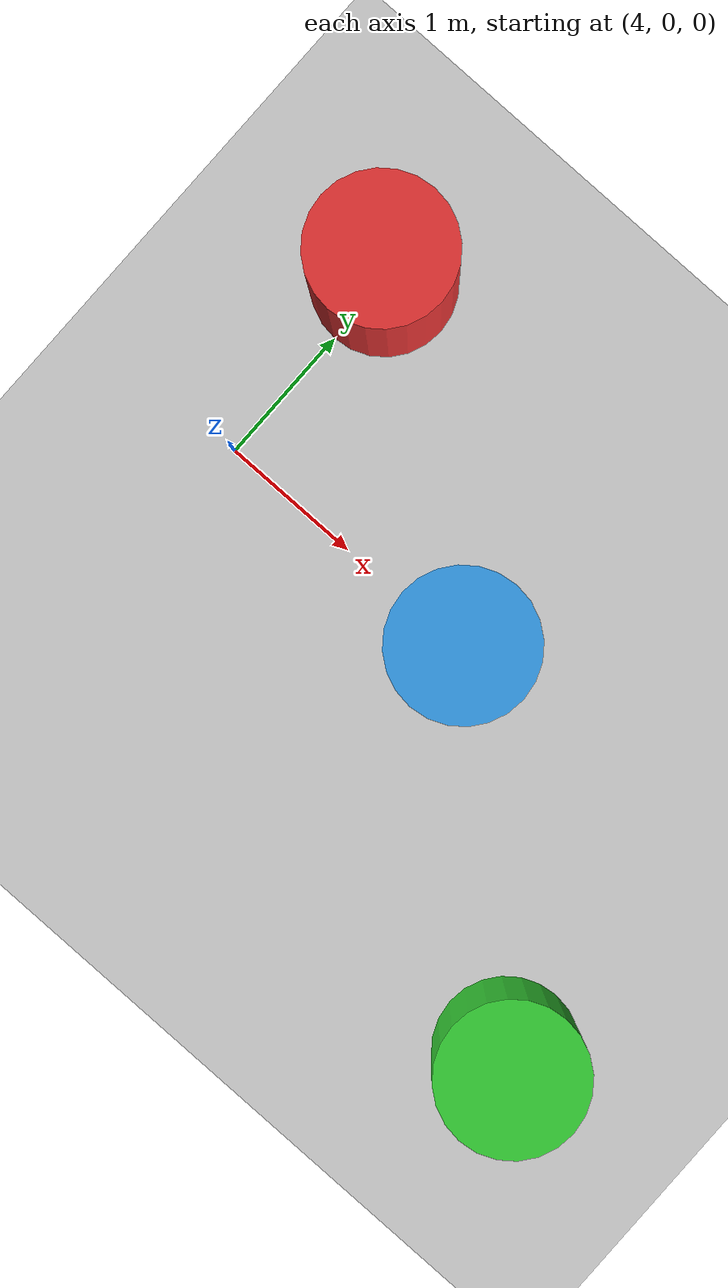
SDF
<?xml version="1.0" ?>
<sdf version="1.5">
    <world name="default">

        <physics type="ode">
            <max_step_size>0.0005</max_step_size>
            <real_time_factor>1</real_time_factor>
            <real_time_update_rate>2000</real_time_update_rate>
            <gravity>0 0 -9.81</gravity>
            <ode>
                <solver>
                    <type>quick</type>
                    <iters>50</iters>
                    <sor>1.3</sor>
                </solver>
                <constraints>
                    <cfm>0.0</cfm>
                    <erp>0.2</erp>
                    <contact_max_correcting_vel>10.0</contact_max_correcting_vel>
                    <contact_surface_layer>0.001</contact_surface_layer>
                </constraints>
            </ode>
        </physics>

        <scene>
            <sky>
                <clouds>
                    <speed>12</speed>
                </clouds>
            </sky>
        </scene>

        <include>
            <uri>model://sun</uri>
        </include>
        <include>
            <uri>model://ground_plane</uri>
        </include>

        <!-- 正前方偏右，大圆柱 -->
        <model name="obstacle_1">
            <static>true</static>
            <link name="link">
                <pose>4.0 1.5 1.0 0 0 0</pose>
                <collision name="collision">
                    <geometry>
                        <cylinder>
                            <radius>0.5</radius>
                            <length>2.0</length>
                        </cylinder>
                    </geometry>
                </collision>
                <visual name="visual">
                    <geometry>
                        <cylinder>
                            <radius>0.5</radius>
                            <length>2.0</length>
                        </cylinder>
                    </geometry>
                    <material>
                        <ambient>0.9 0.2 0.2 1.0</ambient>
                        <diffuse>0.9 0.2 0.2 1.0</diffuse>
                    </material>
                </visual>
            </link>
        </model>

        <!-- 正前方正中间，大圆柱 -->
        <model name="obstacle_2">
            <static>true</static>
            <link name="link">
                <pose>6.0 0.0 1.0 0 0 0</pose>
                <collision name="collision">
                    <geometry>
                        <cylinder>
                            <radius>0.5</radius>
                            <length>2.0</length>
                        </cylinder>
                    </geometry>
                </collision>
                <visual name="visual">
                    <geometry>
                        <cylinder>
                            <radius>0.5</radius>
                            <length>2.0</length>
                        </cylinder>
                    </geometry>
                    <material>
                        <ambient>0.2 0.6 0.9 1.0</ambient>
                        <diffuse>0.2 0.6 0.9 1.0</diffuse>
                    </material>
                </visual>
            </link>
        </model>

        <!-- 正前方偏左，大圆柱 -->
        <model name="obstacle_3">
            <static>true</static>
            <link name="link">
                <pose>8.0 -1.8 1.0 0 0 0</pose>
                <collision name="collision">
                    <geometry>
                        <cylinder>
                            <radius>0.5</radius>
                            <length>2.0</length>
                        </cylinder>
                    </geometry>
                </collision>
                <visual name="visual">
                    <geometry>
                        <cylinder>
                            <radius>0.5</radius>
                            <length>2.0</length>
                        </cylinder>
                    </geometry>
                    <material>
                        <ambient>0.2 0.8 0.2 1.0</ambient>
                        <diffuse>0.2 0.8 0.2 1.0</diffuse>
                    </material>
                </visual>
            </link>
        </model>

    </world>
</sdf>
